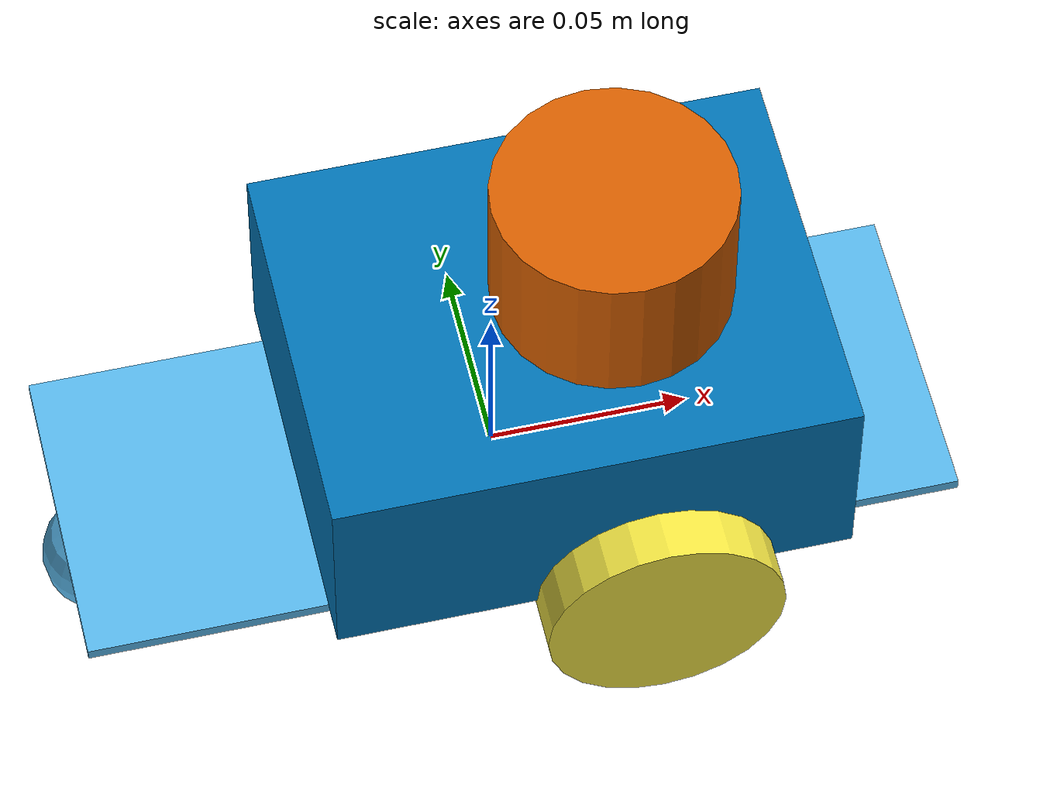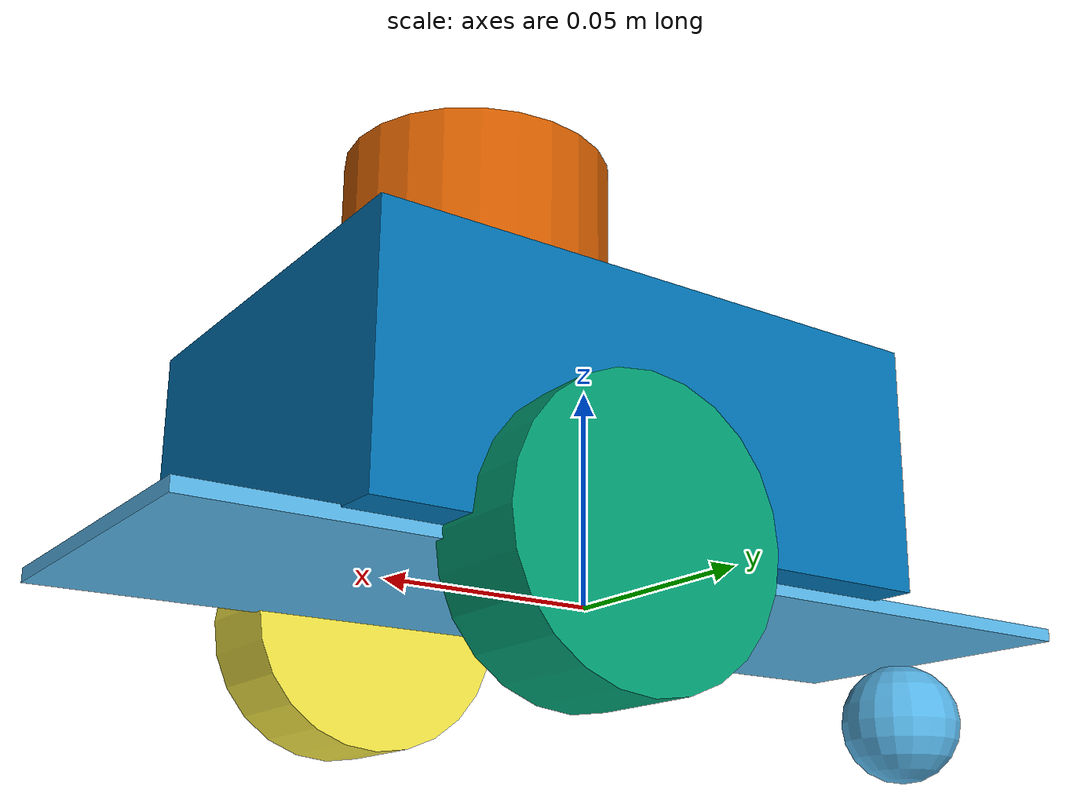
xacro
<?xml version='1.0'?>

<robot name="gopigo3" xmlns:xacro="http://www.ros.org/wiki/xacro">

  <link name='odom'/>

  <link name='base_link'>

    <inertial>
      <mass value="15.0"/>
      <origin xyz="0 0 0.036" rpy=" 0 0 0"/>
      <inertia
          ixx="0.1" ixy="0" ixz="0"
          iyy="0.1" iyz="0"
          izz="0.1"
      />
    </inertial>

    <collision name='collision'>
      <origin xyz="0 0 0.036" rpy=" 0 0 0"/>
      <geometry>
        <box size=".22 .08 .003"/>
      </geometry>
    </collision>

    <visual name='base_link_visual'>
      <origin xyz="0 0 0.036" rpy=" 0 0 0"/>
      <geometry>
        <box size=".22 .08 .003"/>
      </geometry>
    </visual>

    <collision name='caster_collision'>
      <origin xyz="-0.1 0 0.018" rpy=" 0 0 0"/>
      <geometry>
        <sphere radius="0.015"/>
      </geometry>
      <surface>
        <friction>
          <ode>
            <mu>0</mu>
            <mu2>0</mu2>
            <slip1>1.0</slip1>
            <slip2>1.0</slip2>
          </ode>
        </friction>
      </surface>
    </collision>

    <visual name='caster_visual'>
      <origin xyz="-0.1 0 0.018" rpy=" 0 0 0"/>
      <geometry>
        <sphere radius="0.015"/>
      </geometry>
    </visual>

  </link>

  <link name="left_wheel">
    <!--origin xyz="0.1 0.13 0.1" rpy="0 1.5707 1.5707"/-->
    <collision name="collision">
      <origin xyz="0 0 0" rpy="0 1.5707 1.5707"/>
      <geometry>
        <cylinder radius="0.03" length="0.025"/>
      </geometry>
    </collision>
    <visual name="left_wheel_visual">
      <origin xyz="0 0 0" rpy="0 1.5707 1.5707"/>
      <geometry>
        <cylinder radius="0.03" length="0.025"/>
      </geometry>
    </visual>
    <inertial>
      <origin xyz="0 0 0" rpy="0 1.5707 1.5707"/>
      <mass value="5"/>
      <inertia
        ixx=".1" ixy="0.0" ixz="0.0"
        iyy=".1" iyz="0.0"
        izz=".1"/>
    </inertial>
  </link>

  <link name="right_wheel">
    <!--origin xyz="0.1 -0.13 0.1" rpy="0 1.5707 1.5707"/-->
    <collision name="collision">
      <origin xyz="0 0 0" rpy="0 1.5707 1.5707"/>
      <geometry>
        <cylinder radius="0.03" length="0.025"/>
      </geometry>
    </collision>
    <visual name="right_wheel_visual">
      <origin xyz="0 0 0" rpy="0 1.5707 1.5707"/>
      <geometry>
        <cylinder radius="0.03" length="0.025"/>
      </geometry>
    </visual>
    <inertial>
      <origin xyz="0 0 0" rpy="0 1.5707 1.5707"/>
      <mass value="5"/>
      <inertia
        ixx=".1" ixy="0.0" ixz="0.0"
        iyy=".1" iyz="0.0"
        izz=".1"/>
    </inertial>
  </link>

  <link name="gopigo3_body">
    <visual>
      <geometry>
        <box size=".13 .1 .055"/>
      </geometry>
      <origin xyz="0 0 0" rpy=" 0 0 0"/>
    </visual>
    <collision name="collision">
      <origin xyz="0 0 0" rpy="0 0 0"/>
      <geometry>
        <box size=".13 .1 .055"/>
      </geometry>
    </collision>
    <inertial>
      <origin xyz="0 0 0" rpy="0 0 0"/>
      <mass value="5"/>
      <inertia
        ixx=".1" ixy="0.0" ixz="0.0"
        iyy=".1" iyz="0.0"
        izz=".1"/>
    </inertial>
  </link>

  <link name="lidar">
    <visual>
      <geometry>
        <cylinder radius="0.03" length="0.04"/>
      </geometry>
      <origin xyz="0 0 0" rpy=" 0 0 0"/>
    </visual>
    <collision name="collision">
      <origin xyz="0 0 0" rpy=" 0 0 0"/>
      <geometry>
        <cylinder radius="0.03" length="0.04"/>
      </geometry>
    </collision>
    <inertial>
      <origin xyz="0 0 0" rpy=" 0 0 0"/>
      <mass value="5"/>
      <inertia
        ixx=".1" ixy="0.0" ixz="0.0"
        iyy=".1" iyz="0.0"
        izz=".1"/>
    </inertial>
  </link>

  <!-- Joints -->

  <joint type="floating" name="odom_to_base">
    <parent link="odom"/>
    <child link="base_link"/>
    <origin xyz="0 0 -0.036" rpy="0 0 0"/>
  </joint>

  <joint type="continuous" name="left_wheel_hinge">
    <origin xyz="0.03 0.05 0.036" rpy="0 0 0"/>
    <!--origin xyz="0.1 0.13 0" rpy="0 1.5707 1.5707"/-->
    <child link="left_wheel"/>
    <parent link="base_link"/>
    <axis xyz="0 1 0" rpy="0 0 0"/>
    <limit effort="10000" velocity="1000"/>
    <joint_properties damping="1.0" friction="1.0"/>
  </joint>

  <joint type="continuous" name="right_wheel_hinge">
    <origin xyz="0.03 -0.05 0.036" rpy="0 0 0"/>
    <!--origin xyz="0.1 -0.13 0" rpy="0 1.5707 1.5707"/-->
    <child link="right_wheel"/>
    <parent link="base_link"/>
    <axis xyz="0 1 0" rpy="0 0 0"/>
    <limit effort="10000" velocity="1000"/>
    <joint_properties damping="1.0" friction="1.0"/>
  </joint>

  <joint type="fixed" name="base_to_body">
    <origin xyz="0.015 0 0.0645" rpy=" 0 0 0"/>
    <child link="gopigo3_body"/>
    <parent link="base_link"/>
  </joint>

  <joint type="fixed" name="base_to_lidar">
    <origin xyz="0.03 0 0.1126" rpy=" 0 0 0"/>
    <parent link="base_link"/>
    <child link="lidar"/>
  </joint>

</robot>
